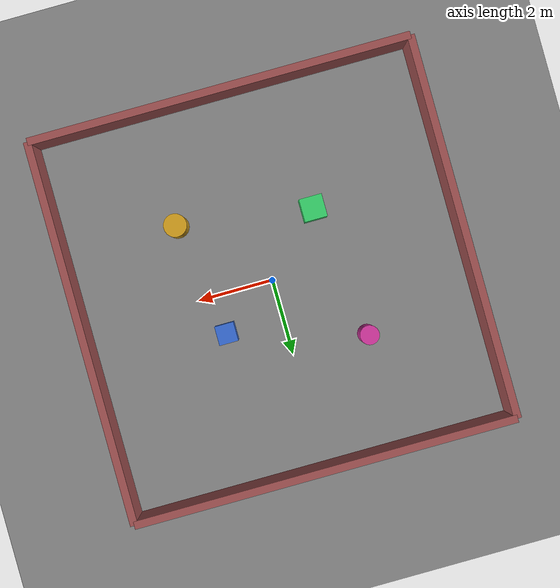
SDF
<?xml version="1.0" ?>
<sdf version="1.9">
  <world name="mecanum_world">
    <physics name="1ms" type="ignored">
      <max_step_size>0.001</max_step_size>
      <real_time_factor>1.0</real_time_factor>
    </physics>
    <plugin filename="gz-sim-physics-system" name="gz::sim::systems::Physics"/>
    <plugin filename="gz-sim-user-commands-system" name="gz::sim::systems::UserCommands"/>
    <plugin filename="gz-sim-scene-broadcaster-system" name="gz::sim::systems::SceneBroadcaster"/>
    <plugin filename="gz-sim-sensors-system" name="gz::sim::systems::Sensors">
      <render_engine>ogre2</render_engine>
    </plugin>
    <plugin filename="gz-sim-contact-system" name="gz::sim::systems::Contact"/>
    <light type="directional" name="sun">
      <cast_shadows>true</cast_shadows>
      <pose>0 0 10 0 0 0</pose>
      <diffuse>0.8 0.8 0.8 1</diffuse>
      <specular>0.2 0.2 0.2 1</specular>
      <direction>-0.5 0.1 -0.9</direction>
    </light>
    <model name="ground_plane">
      <static>true</static>
      <link name="link">
        <collision name="collision">
          <geometry><plane><normal>0 0 1</normal><size>30 30</size></plane></geometry>
        </collision>
        <visual name="visual">
          <geometry><plane><normal>0 0 1</normal><size>30 30</size></plane></geometry>
          <material>
            <ambient>0.5 0.5 0.5 1</ambient>
            <diffuse>0.5 0.5 0.5 1</diffuse>
          </material>
        </visual>
      </link>
    </model>

    <!-- Perimeter walls -->
    <model name="wall_north">
      <static>true</static>
      <pose>0 5 0.5 0 0 0</pose>
      <link name="link">
        <collision name="collision"><geometry><box><size>10 0.2 1</size></box></geometry></collision>
        <visual name="visual"><geometry><box><size>10 0.2 1</size></box></geometry>
          <material><ambient>0.6 0.3 0.3 1</ambient><diffuse>0.6 0.3 0.3 1</diffuse></material>
        </visual>
      </link>
    </model>

    <model name="wall_south">
      <static>true</static>
      <pose>0 -5 0.5 0 0 0</pose>
      <link name="link">
        <collision name="collision"><geometry><box><size>10 0.2 1</size></box></geometry></collision>
        <visual name="visual"><geometry><box><size>10 0.2 1</size></box></geometry>
          <material><ambient>0.6 0.3 0.3 1</ambient><diffuse>0.6 0.3 0.3 1</diffuse></material>
        </visual>
      </link>
    </model>

    <model name="wall_east">
      <static>true</static>
      <pose>5 0 0.5 0 0 1.5708</pose>
      <link name="link">
        <collision name="collision"><geometry><box><size>10 0.2 1</size></box></geometry></collision>
        <visual name="visual"><geometry><box><size>10 0.2 1</size></box></geometry>
          <material><ambient>0.6 0.3 0.3 1</ambient><diffuse>0.6 0.3 0.3 1</diffuse></material>
        </visual>
      </link>
    </model>

    <model name="wall_west">
      <static>true</static>
      <pose>-5 0 0.5 0 0 1.5708</pose>
      <link name="link">
        <collision name="collision"><geometry><box><size>10 0.2 1</size></box></geometry></collision>
        <visual name="visual"><geometry><box><size>10 0.2 1</size></box></geometry>
          <material><ambient>0.6 0.3 0.3 1</ambient><diffuse>0.6 0.3 0.3 1</diffuse></material>
        </visual>
      </link>
    </model>

    <!-- Obstacles for LiDAR + SLAM to see -->
    <model name="box_obstacle_1">
      <static>true</static>
      <pose>1.5 1.0 0.3 0 0 0</pose>
      <link name="link">
        <collision name="collision"><geometry><box><size>0.5 0.5 0.6</size></box></geometry></collision>
        <visual name="visual"><geometry><box><size>0.5 0.5 0.6</size></box></geometry>
          <material><ambient>0.2 0.4 0.8 1</ambient><diffuse>0.2 0.4 0.8 1</diffuse></material>
        </visual>
      </link>
    </model>

    <model name="box_obstacle_2">
      <static>true</static>
      <pose>-1.5 -1.5 0.3 0 0 0</pose>
      <link name="link">
        <collision name="collision"><geometry><box><size>0.6 0.6 0.6</size></box></geometry></collision>
        <visual name="visual"><geometry><box><size>0.6 0.6 0.6</size></box></geometry>
          <material><ambient>0.2 0.8 0.4 1</ambient><diffuse>0.2 0.8 0.4 1</diffuse></material>
        </visual>
      </link>
    </model>

    <model name="cylinder_obstacle_1">
      <static>true</static>
      <pose>2.0 -2.0 0.4 0 0 0</pose>
      <link name="link">
        <collision name="collision"><geometry><cylinder><radius>0.3</radius><length>0.8</length></cylinder></geometry></collision>
        <visual name="visual"><geometry><cylinder><radius>0.3</radius><length>0.8</length></cylinder></geometry>
          <material><ambient>0.8 0.6 0.1 1</ambient><diffuse>0.8 0.6 0.1 1</diffuse></material>
        </visual>
      </link>
    </model>

    <model name="cylinder_obstacle_2">
      <static>true</static>
      <pose>-2.0 2.0 0.4 0 0 0</pose>
      <link name="link">
        <collision name="collision"><geometry><cylinder><radius>0.25</radius><length>0.8</length></cylinder></geometry></collision>
        <visual name="visual"><geometry><cylinder><radius>0.25</radius><length>0.8</length></cylinder></geometry>
          <material><ambient>0.8 0.2 0.6 1</ambient><diffuse>0.8 0.2 0.6 1</diffuse></material>
        </visual>
      </link>
    </model>

  </world>
</sdf>
